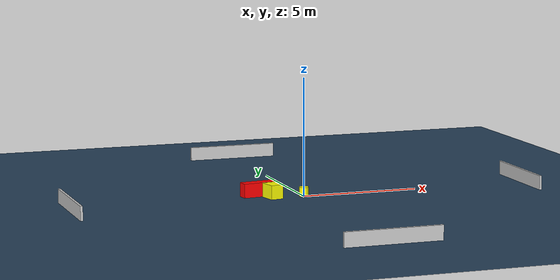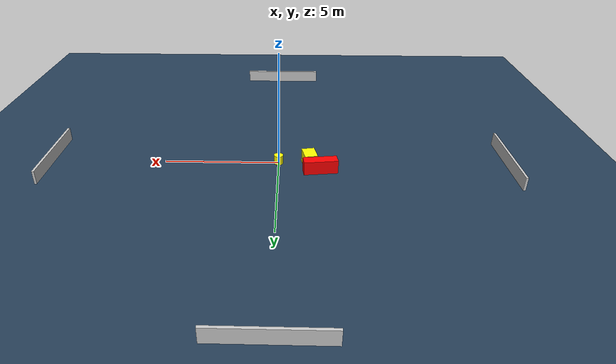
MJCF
<?xml version="1.0" ?>
<mujoco model="generated_environment">
  <option timestep="0.01" integrator="RK4" cone="elliptic"/>
  <default>
    <geom density="1"/>
  </default>
  <asset>
    <texture builtin="gradient" height="3072" name="skybox" rgb1="0.3 0.5 0.7" rgb2="0 0 0" type="skybox" width="512"/>
    <texture builtin="checker" height="300" name="groundplane" rgb1="0.2 0.3 0.4" rgb2="0.1 0.2 0.3" type="2d" width="300"/>
    <material name="groundplane" reflectance="0.2" texrepeat="5 5" texture="groundplane"/>
  </asset>
  <worldbody>
    <light dir="0 0 -1" directional="true" pos="0 0 1.5"/>
    <geom condim="3" friction="0.5 0.005 0.001" material="groundplane" name="floor" pos="0 0 0" size="0 0 0.05" type="plane"/>
    <body name="walls">
      <geom name="wall_1" condim="4" pos="-10.0 0.0 0.3" rgba="0.800000011920929 0.800000011920929 0.800000011920929 1.0" size="0.05 2.0 0.3" type="box"/>
      <geom name="wall_2" condim="4" pos="10.0 0.0 0.3" rgba="0.800000011920929 0.800000011920929 0.800000011920929 1.0" size="0.05 2.0 0.3" type="box"/>
      <geom name="wall_3" condim="4" pos="0.0 -10.0 0.3" rgba="0.800000011920929 0.800000011920929 0.800000011920929 1.0" size="2.0 0.05 0.3" type="box"/>
      <geom name="wall_4" condim="4" pos="0.0 10.0 0.3" rgba="0.800000011920929 0.800000011920929 0.800000011920929 1.0" size="2.0 0.05 0.3" type="box"/>
    </body>
    <body name="robot">
      <joint name="joint_x" type="slide" pos="0 0 0" axis="1 0 0"/>
      <joint name="joint_y" type="slide" pos="0 0 0" axis="0 1 0"/>
      <geom name="robot" type="cylinder" pos="0.0 0.0 0.2" size="0.2 0.2 0.0" mass="5.0" friction="1.0 0.005 0.0001" condim="4" rgba="1.0 1.0 0.0 1.0"/>
    </body>
    <body name="obstacle_1_movable">
      <geom name="obstacle_1_movable" condim="4" pos="-1.348941209828687 0.09189097778526524 0.3" euler="0 0 101.34278917855215" friction="0.0 0.005 0.001" rgba="1.0 1.0 0.0 1.0" size="0.3764915822990994 0.2771808370718957 0.3" type="box" mass="0.1"/>
      <joint type="free"/>
    </body>
    <body name="obstacle_2_static">
      <geom name="obstacle_2_static" condim="4" pos="-1.796361980661497 0.6881359519583441 0.3" euler="0 0 7.304132202307629" friction="0.0 0.005 0.001" rgba="1.0 0.0 0.0 1.0" size="0.7329381216624988 0.23481151695388236 0.3" type="box"/>
    </body>
  </worldbody>
  <actuator>
    <motor name="actuator_x" joint="joint_x" gear="1" ctrlrange="-1 1"/>
    <motor name="actuator_y" joint="joint_y" gear="1" ctrlrange="-1 1"/>
  </actuator>
</mujoco>
